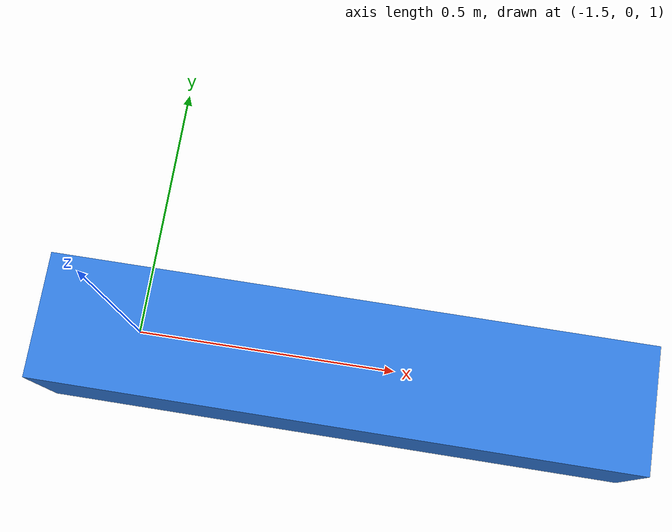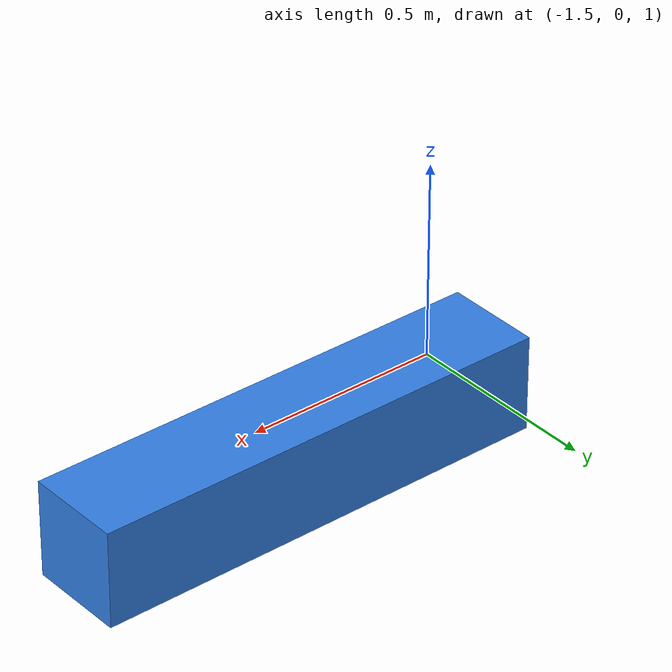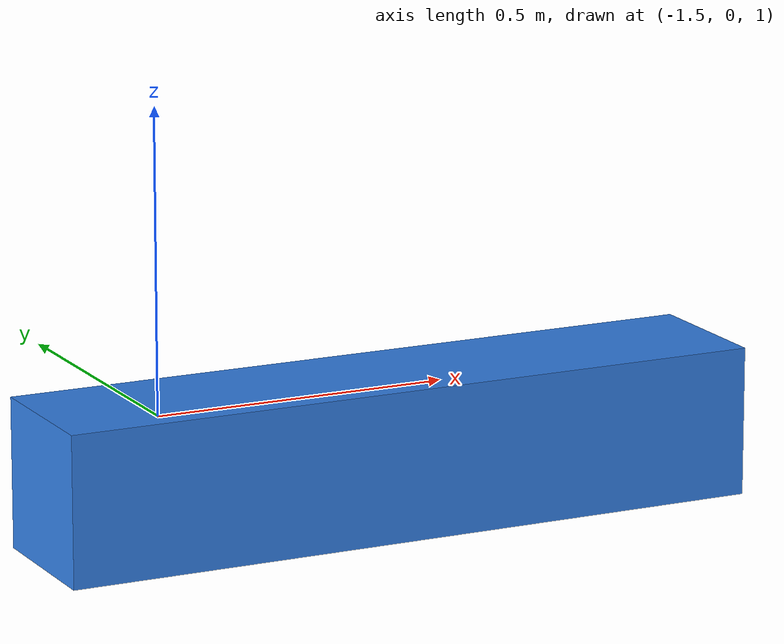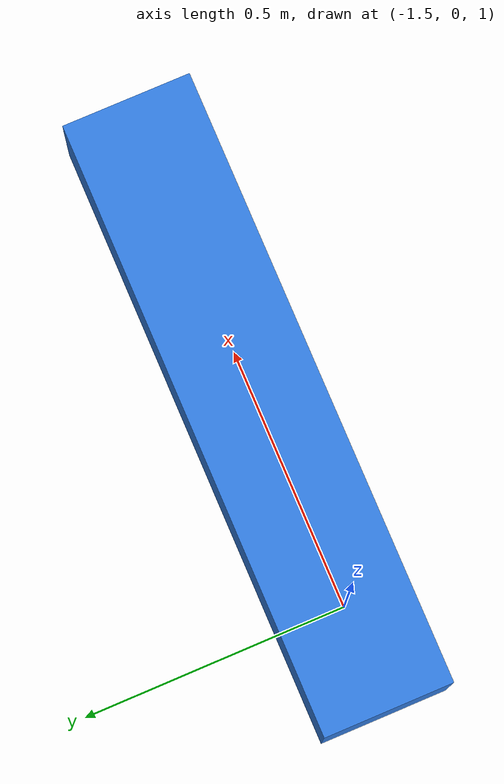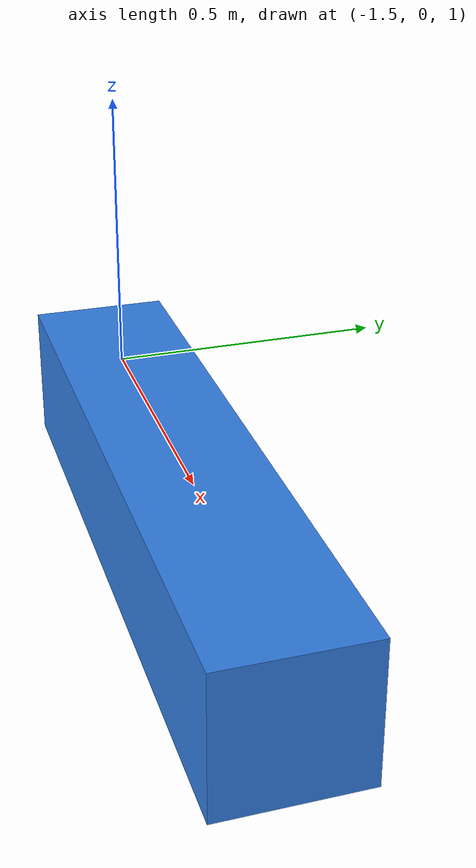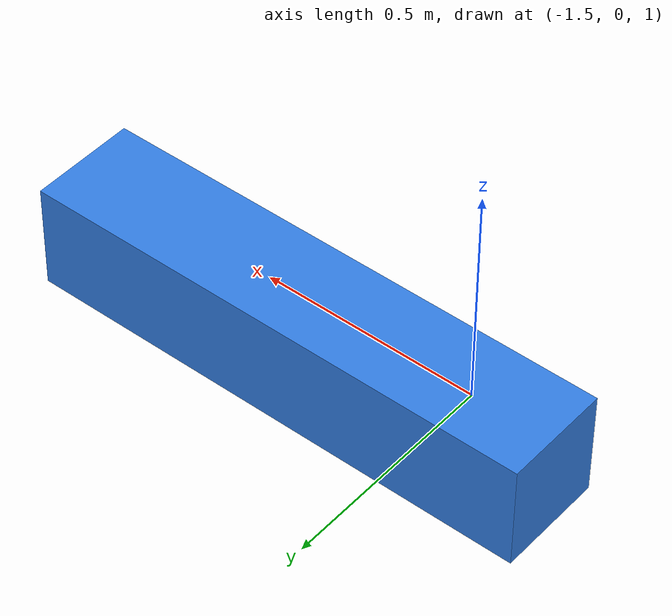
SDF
<?xml version="1.0"?>
<sdf version="1.6">
  <world name="pose_frames">
    <physics name="default" type="ignored"><max_step_size>0.001</max_step_size></physics>
    <gravity>0 0 0</gravity>
    <model name="inertia_frame">
      <static>true</static>
      <link name="rotated_inertia">
        <pose>-1.1 0 0.9 0 0 0</pose>
        <inertial>
          <mass>1</mass>
          <pose>0.15 0 0 0 0 0.7853981633974483</pose>
          <inertia>
            <ixx>0.04</ixx><iyy>0.16</iyy><izz>0.18</izz>
            <ixy>0</ixy><ixz>0</ixz><iyz>0</iyz>
          </inertia>
        </inertial>
        <visual name="body">
          <geometry><box><size>1.2 0.25 0.25</size></box></geometry>
          <material><diffuse>0.2 0.5 0.9 1</diffuse></material>
        </visual>
        <collision name="body">
          <geometry><box><size>1.2 0.25 0.25</size></box></geometry>
        </collision>
      </link>
    </model>
    <model name="soft_frame">
      <static>true</static>
      <link name="posed_soft_ellipsoid">
        <pose>1.1 0 0.9 0 0 0</pose>
        <inertial>
          <mass>1</mass>
          <inertia>
            <ixx>0.2</ixx><iyy>0.2</iyy><izz>0.2</izz>
            <ixy>0</ixy><ixz>0</ixz><iyz>0</iyz>
          </inertia>
        </inertial>
        <soft_shape>
          <total_mass>1</total_mass>
          <pose>0.3 0.3 0.2 0 0 0.7853981633974483</pose>
          <geometry>
            <ellipsoid>
              <size>1.2 0.4 0.7</size>
              <num_slices>16</num_slices><num_stacks>8</num_stacks>
            </ellipsoid>
          </geometry>
        </soft_shape>
      </link>
    </model>
  </world>
</sdf>
